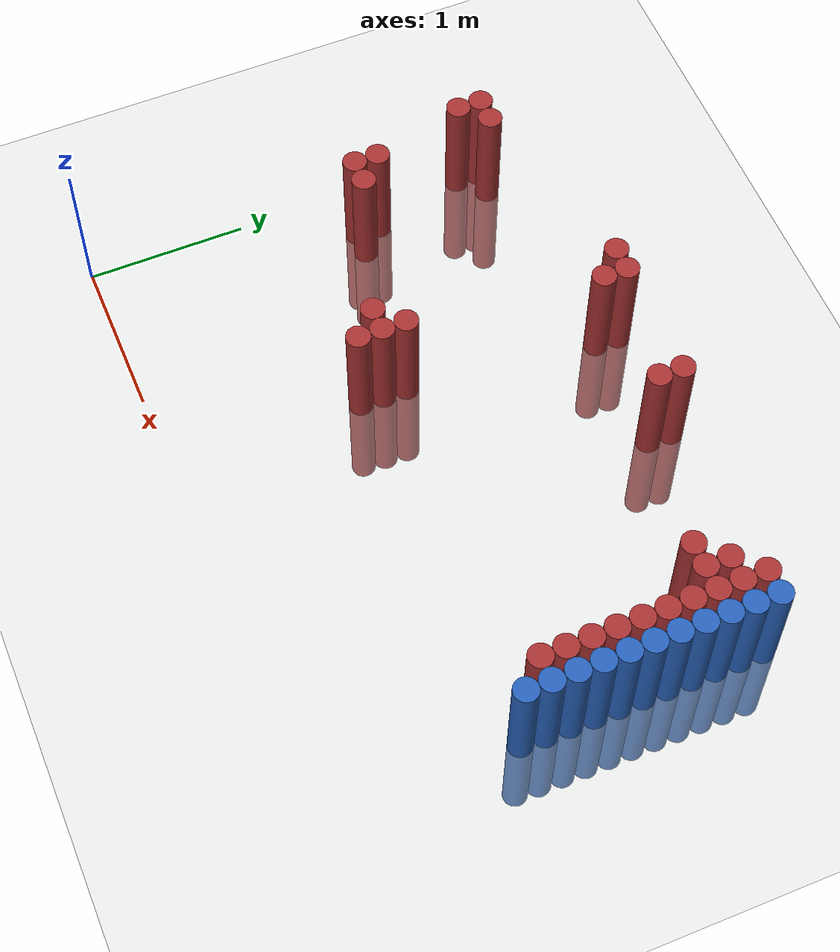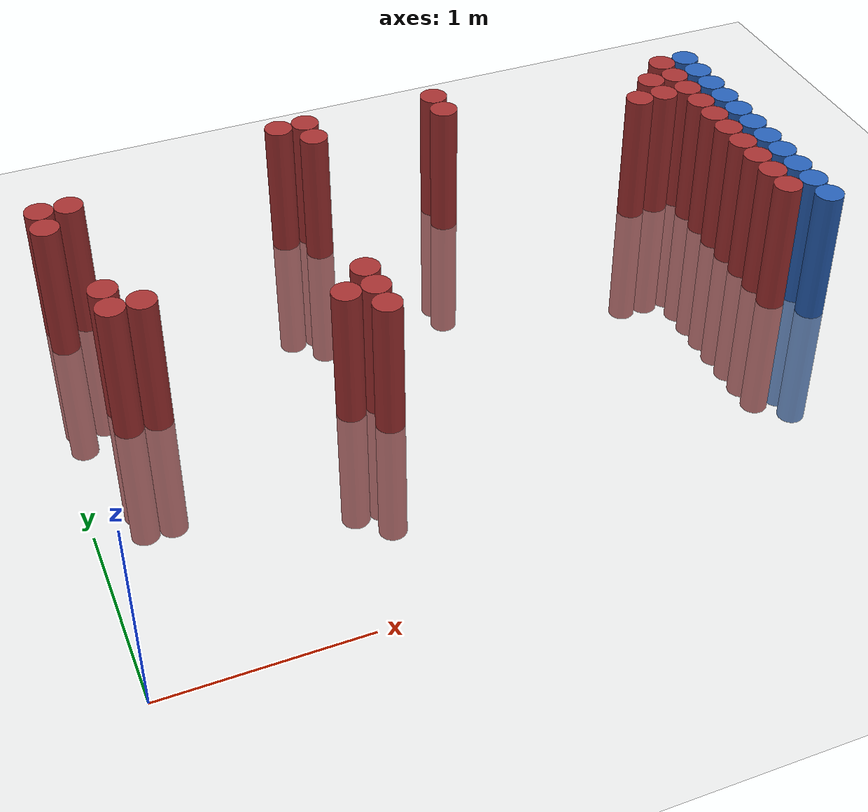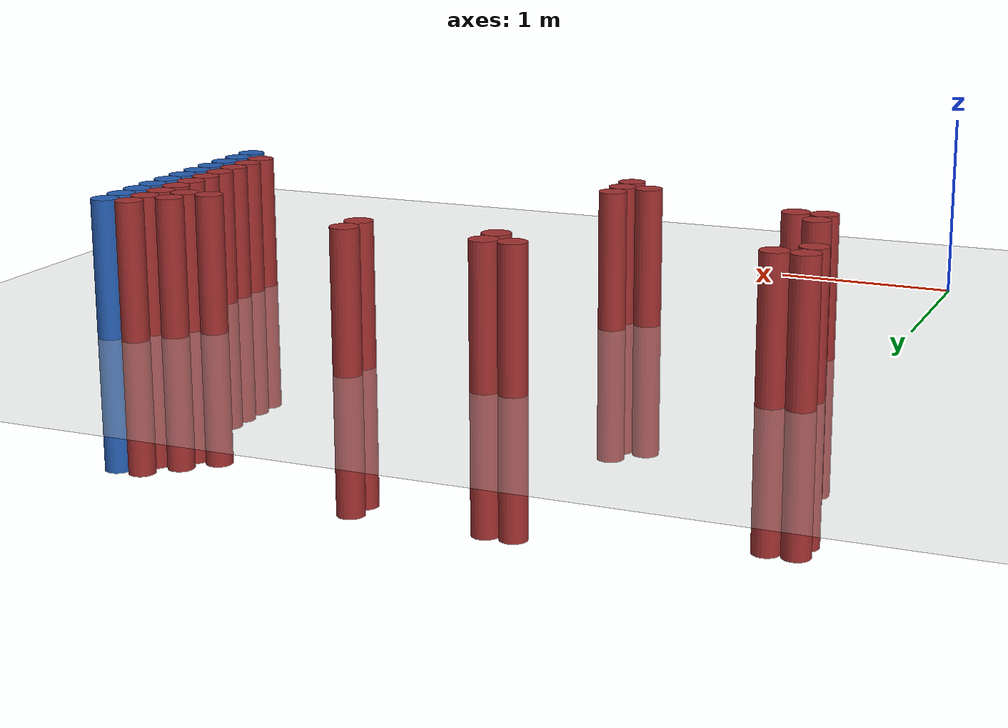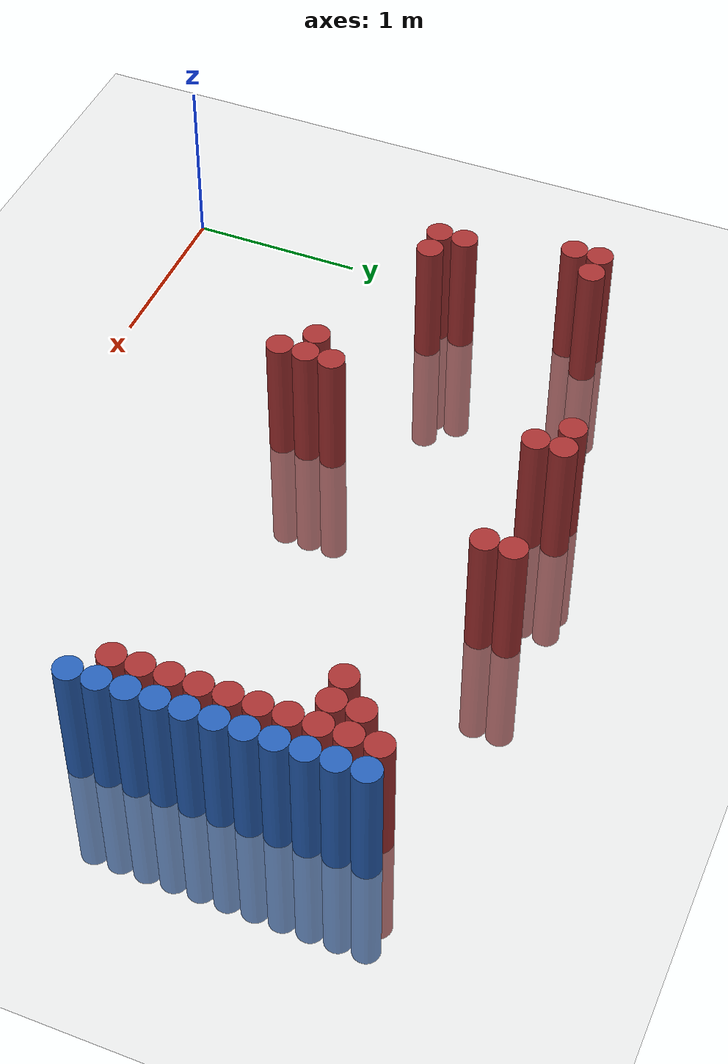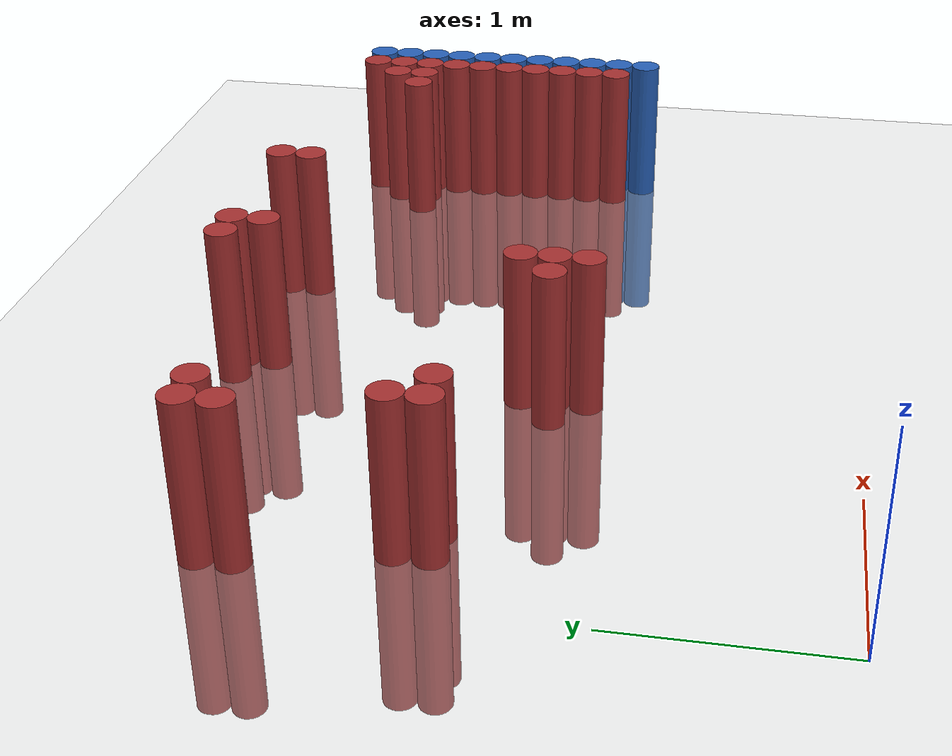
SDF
<sdf version="1.6">
 <world name="default">
  <model name="ground_plane">
   <static>1</static>
   <link name="link">
    <collision name="collision">
     <geometry><plane><normal>0 0 1</normal><size>100 100</size></plane></geometry>
     <surface><friction><ode><mu>100</mu><mu2>50</mu2></ode></friction></surface>
    </collision>
    <visual name="visual">
     <cast_shadows>0</cast_shadows>
     <geometry><plane><normal>0 0 1</normal><size>100 100</size></plane></geometry>
     <material>
      <script><uri>file://media/materials/scripts/gazebo.material</uri><name>Gazebo/Grey</name></script>
     </material>
    </visual>
   </link>
  </model>
  <model name="unit_cylinder_132">
   <static>1</static>
   <pose>3.925000 1.375000 0.000000 0.000000 0.000000 0.000000</pose>
   <link name="link">
    <inertial>
     <mass>1</mass>
     <inertia><ixx>0.145833</ixx><ixy>0</ixy><ixz>0</ixz><iyy>0.145833</iyy><iyz>0</iyz><izz>0.125</izz></inertia>
    </inertial>
    <collision name="collision">
     <geometry><cylinder><radius>0.075000</radius><length>1.5</length></cylinder></geometry>
    </collision>
    <visual name="visual">
     <geometry><cylinder><radius>0.075000</radius><length>1.5</length></cylinder></geometry>
     <material>
      <ambient>0.152000 0.379000 0.720000 1</ambient>
      <diffuse>0.152000 0.379000 0.720000 1</diffuse>
     </material>
     <material>
      <script><name>Gazebo/Grey</name><uri>file://media/materials/scripts/gazebo.material</uri></script>
     </material>
    </visual>
   </link>
  </model>
  <model name="unit_cylinder_134">
   <static>1</static>
   <pose>3.925000 1.525000 0.000000 0.000000 0.000000 0.000000</pose>
   <link name="link">
    <inertial>
     <mass>1</mass>
     <inertia><ixx>0.145833</ixx><ixy>0</ixy><ixz>0</ixz><iyy>0.145833</iyy><iyz>0</iyz><izz>0.125</izz></inertia>
    </inertial>
    <collision name="collision">
     <geometry><cylinder><radius>0.075000</radius><length>1.5</length></cylinder></geometry>
    </collision>
    <visual name="visual">
     <geometry><cylinder><radius>0.075000</radius><length>1.5</length></cylinder></geometry>
     <material>
      <ambient>0.152000 0.379000 0.720000 1</ambient>
      <diffuse>0.152000 0.379000 0.720000 1</diffuse>
     </material>
     <material>
      <script><name>Gazebo/Grey</name><uri>file://media/materials/scripts/gazebo.material</uri></script>
     </material>
    </visual>
   </link>
  </model>
  <model name="unit_cylinder_136">
   <static>1</static>
   <pose>3.925000 1.675000 0.000000 0.000000 0.000000 0.000000</pose>
   <link name="link">
    <inertial>
     <mass>1</mass>
     <inertia><ixx>0.145833</ixx><ixy>0</ixy><ixz>0</ixz><iyy>0.145833</iyy><iyz>0</iyz><izz>0.125</izz></inertia>
    </inertial>
    <collision name="collision">
     <geometry><cylinder><radius>0.075000</radius><length>1.5</length></cylinder></geometry>
    </collision>
    <visual name="visual">
     <geometry><cylinder><radius>0.075000</radius><length>1.5</length></cylinder></geometry>
     <material>
      <ambient>0.152000 0.379000 0.720000 1</ambient>
      <diffuse>0.152000 0.379000 0.720000 1</diffuse>
     </material>
     <material>
      <script><name>Gazebo/Grey</name><uri>file://media/materials/scripts/gazebo.material</uri></script>
     </material>
    </visual>
   </link>
  </model>
  <model name="unit_cylinder_138">
   <static>1</static>
   <pose>3.925000 1.825000 0.000000 0.000000 0.000000 0.000000</pose>
   <link name="link">
    <inertial>
     <mass>1</mass>
     <inertia><ixx>0.145833</ixx><ixy>0</ixy><ixz>0</ixz><iyy>0.145833</iyy><iyz>0</iyz><izz>0.125</izz></inertia>
    </inertial>
    <collision name="collision">
     <geometry><cylinder><radius>0.075000</radius><length>1.5</length></cylinder></geometry>
    </collision>
    <visual name="visual">
     <geometry><cylinder><radius>0.075000</radius><length>1.5</length></cylinder></geometry>
     <material>
      <ambient>0.152000 0.379000 0.720000 1</ambient>
      <diffuse>0.152000 0.379000 0.720000 1</diffuse>
     </material>
     <material>
      <script><name>Gazebo/Grey</name><uri>file://media/materials/scripts/gazebo.material</uri></script>
     </material>
    </visual>
   </link>
  </model>
  <model name="unit_cylinder_140">
   <static>1</static>
   <pose>3.925000 1.975000 0.000000 0.000000 0.000000 0.000000</pose>
   <link name="link">
    <inertial>
     <mass>1</mass>
     <inertia><ixx>0.145833</ixx><ixy>0</ixy><ixz>0</ixz><iyy>0.145833</iyy><iyz>0</iyz><izz>0.125</izz></inertia>
    </inertial>
    <collision name="collision">
     <geometry><cylinder><radius>0.075000</radius><length>1.5</length></cylinder></geometry>
    </collision>
    <visual name="visual">
     <geometry><cylinder><radius>0.075000</radius><length>1.5</length></cylinder></geometry>
     <material>
      <ambient>0.152000 0.379000 0.720000 1</ambient>
      <diffuse>0.152000 0.379000 0.720000 1</diffuse>
     </material>
     <material>
      <script><name>Gazebo/Grey</name><uri>file://media/materials/scripts/gazebo.material</uri></script>
     </material>
    </visual>
   </link>
  </model>
  <model name="unit_cylinder_142">
   <static>1</static>
   <pose>3.925000 2.125000 0.000000 0.000000 0.000000 0.000000</pose>
   <link name="link">
    <inertial>
     <mass>1</mass>
     <inertia><ixx>0.145833</ixx><ixy>0</ixy><ixz>0</ixz><iyy>0.145833</iyy><iyz>0</iyz><izz>0.125</izz></inertia>
    </inertial>
    <collision name="collision">
     <geometry><cylinder><radius>0.075000</radius><length>1.5</length></cylinder></geometry>
    </collision>
    <visual name="visual">
     <geometry><cylinder><radius>0.075000</radius><length>1.5</length></cylinder></geometry>
     <material>
      <ambient>0.152000 0.379000 0.720000 1</ambient>
      <diffuse>0.152000 0.379000 0.720000 1</diffuse>
     </material>
     <material>
      <script><name>Gazebo/Grey</name><uri>file://media/materials/scripts/gazebo.material</uri></script>
     </material>
    </visual>
   </link>
  </model>
  <model name="unit_cylinder_144">
   <static>1</static>
   <pose>3.925000 2.275000 0.000000 0.000000 0.000000 0.000000</pose>
   <link name="link">
    <inertial>
     <mass>1</mass>
     <inertia><ixx>0.145833</ixx><ixy>0</ixy><ixz>0</ixz><iyy>0.145833</iyy><iyz>0</iyz><izz>0.125</izz></inertia>
    </inertial>
    <collision name="collision">
     <geometry><cylinder><radius>0.075000</radius><length>1.5</length></cylinder></geometry>
    </collision>
    <visual name="visual">
     <geometry><cylinder><radius>0.075000</radius><length>1.5</length></cylinder></geometry>
     <material>
      <ambient>0.152000 0.379000 0.720000 1</ambient>
      <diffuse>0.152000 0.379000 0.720000 1</diffuse>
     </material>
     <material>
      <script><name>Gazebo/Grey</name><uri>file://media/materials/scripts/gazebo.material</uri></script>
     </material>
    </visual>
   </link>
  </model>
  <model name="unit_cylinder_146">
   <static>1</static>
   <pose>3.925000 2.425000 0.000000 0.000000 0.000000 0.000000</pose>
   <link name="link">
    <inertial>
     <mass>1</mass>
     <inertia><ixx>0.145833</ixx><ixy>0</ixy><ixz>0</ixz><iyy>0.145833</iyy><iyz>0</iyz><izz>0.125</izz></inertia>
    </inertial>
    <collision name="collision">
     <geometry><cylinder><radius>0.075000</radius><length>1.5</length></cylinder></geometry>
    </collision>
    <visual name="visual">
     <geometry><cylinder><radius>0.075000</radius><length>1.5</length></cylinder></geometry>
     <material>
      <ambient>0.152000 0.379000 0.720000 1</ambient>
      <diffuse>0.152000 0.379000 0.720000 1</diffuse>
     </material>
     <material>
      <script><name>Gazebo/Grey</name><uri>file://media/materials/scripts/gazebo.material</uri></script>
     </material>
    </visual>
   </link>
  </model>
  <model name="unit_cylinder_148">
   <static>1</static>
   <pose>3.925000 2.575000 0.000000 0.000000 0.000000 0.000000</pose>
   <link name="link">
    <inertial>
     <mass>1</mass>
     <inertia><ixx>0.145833</ixx><ixy>0</ixy><ixz>0</ixz><iyy>0.145833</iyy><iyz>0</iyz><izz>0.125</izz></inertia>
    </inertial>
    <collision name="collision">
     <geometry><cylinder><radius>0.075000</radius><length>1.5</length></cylinder></geometry>
    </collision>
    <visual name="visual">
     <geometry><cylinder><radius>0.075000</radius><length>1.5</length></cylinder></geometry>
     <material>
      <ambient>0.152000 0.379000 0.720000 1</ambient>
      <diffuse>0.152000 0.379000 0.720000 1</diffuse>
     </material>
     <material>
      <script><name>Gazebo/Grey</name><uri>file://media/materials/scripts/gazebo.material</uri></script>
     </material>
    </visual>
   </link>
  </model>
  <model name="unit_cylinder_150">
   <static>1</static>
   <pose>3.925000 2.725000 0.000000 0.000000 0.000000 0.000000</pose>
   <link name="link">
    <inertial>
     <mass>1</mass>
     <inertia><ixx>0.145833</ixx><ixy>0</ixy><ixz>0</ixz><iyy>0.145833</iyy><iyz>0</iyz><izz>0.125</izz></inertia>
    </inertial>
    <collision name="collision">
     <geometry><cylinder><radius>0.075000</radius><length>1.5</length></cylinder></geometry>
    </collision>
    <visual name="visual">
     <geometry><cylinder><radius>0.075000</radius><length>1.5</length></cylinder></geometry>
     <material>
      <ambient>0.152000 0.379000 0.720000 1</ambient>
      <diffuse>0.152000 0.379000 0.720000 1</diffuse>
     </material>
     <material>
      <script><name>Gazebo/Grey</name><uri>file://media/materials/scripts/gazebo.material</uri></script>
     </material>
    </visual>
   </link>
  </model>
  <model name="unit_cylinder_333">
   <static>1</static>
   <pose>0.175000 2.425000 0.000000 0.000000 0.000000 0.000000</pose>
   <link name="link">
    <inertial>
     <mass>1</mass>
     <inertia><ixx>0.145833</ixx><ixy>0</ixy><ixz>0</ixz><iyy>0.145833</iyy><iyz>0</iyz><izz>0.125</izz></inertia>
    </inertial>
    <collision name="collision">
     <geometry><cylinder><radius>0.075000</radius><length>1.5</length></cylinder></geometry>
    </collision>
    <visual name="visual">
     <geometry><cylinder><radius>0.075000</radius><length>1.5</length></cylinder></geometry>
     <material>
      <ambient>0.648000 0.192000 0.192000 1</ambient>
      <diffuse>0.648000 0.192000 0.192000 1</diffuse>
     </material>
     <material>
      <script><name>Gazebo/Grey</name><uri>file://media/materials/scripts/gazebo.material</uri></script>
     </material>
    </visual>
   </link>
  </model>
  <model name="unit_cylinder_334">
   <static>1</static>
   <pose>0.175000 2.575000 0.000000 0.000000 0.000000 0.000000</pose>
   <link name="link">
    <inertial>
     <mass>1</mass>
     <inertia><ixx>0.145833</ixx><ixy>0</ixy><ixz>0</ixz><iyy>0.145833</iyy><iyz>0</iyz><izz>0.125</izz></inertia>
    </inertial>
    <collision name="collision">
     <geometry><cylinder><radius>0.075000</radius><length>1.5</length></cylinder></geometry>
    </collision>
    <visual name="visual">
     <geometry><cylinder><radius>0.075000</radius><length>1.5</length></cylinder></geometry>
     <material>
      <ambient>0.648000 0.192000 0.192000 1</ambient>
      <diffuse>0.648000 0.192000 0.192000 1</diffuse>
     </material>
     <material>
      <script><name>Gazebo/Grey</name><uri>file://media/materials/scripts/gazebo.material</uri></script>
     </material>
    </visual>
   </link>
  </model>
  <model name="unit_cylinder_336">
   <static>1</static>
   <pose>0.325000 1.675000 0.000000 0.000000 0.000000 0.000000</pose>
   <link name="link">
    <inertial>
     <mass>1</mass>
     <inertia><ixx>0.145833</ixx><ixy>0</ixy><ixz>0</ixz><iyy>0.145833</iyy><iyz>0</iyz><izz>0.125</izz></inertia>
    </inertial>
    <collision name="collision">
     <geometry><cylinder><radius>0.075000</radius><length>1.5</length></cylinder></geometry>
    </collision>
    <visual name="visual">
     <geometry><cylinder><radius>0.075000</radius><length>1.5</length></cylinder></geometry>
     <material>
      <ambient>0.648000 0.192000 0.192000 1</ambient>
      <diffuse>0.648000 0.192000 0.192000 1</diffuse>
     </material>
     <material>
      <script><name>Gazebo/Grey</name><uri>file://media/materials/scripts/gazebo.material</uri></script>
     </material>
    </visual>
   </link>
  </model>
  <model name="unit_cylinder_337">
   <static>1</static>
   <pose>0.325000 1.825000 0.000000 0.000000 0.000000 0.000000</pose>
   <link name="link">
    <inertial>
     <mass>1</mass>
     <inertia><ixx>0.145833</ixx><ixy>0</ixy><ixz>0</ixz><iyy>0.145833</iyy><iyz>0</iyz><izz>0.125</izz></inertia>
    </inertial>
    <collision name="collision">
     <geometry><cylinder><radius>0.075000</radius><length>1.5</length></cylinder></geometry>
    </collision>
    <visual name="visual">
     <geometry><cylinder><radius>0.075000</radius><length>1.5</length></cylinder></geometry>
     <material>
      <ambient>0.648000 0.192000 0.192000 1</ambient>
      <diffuse>0.648000 0.192000 0.192000 1</diffuse>
     </material>
     <material>
      <script><name>Gazebo/Grey</name><uri>file://media/materials/scripts/gazebo.material</uri></script>
     </material>
    </visual>
   </link>
  </model>
  <model name="unit_cylinder_338">
   <static>1</static>
   <pose>0.325000 2.575000 0.000000 0.000000 0.000000 0.000000</pose>
   <link name="link">
    <inertial>
     <mass>1</mass>
     <inertia><ixx>0.145833</ixx><ixy>0</ixy><ixz>0</ixz><iyy>0.145833</iyy><iyz>0</iyz><izz>0.125</izz></inertia>
    </inertial>
    <collision name="collision">
     <geometry><cylinder><radius>0.075000</radius><length>1.5</length></cylinder></geometry>
    </collision>
    <visual name="visual">
     <geometry><cylinder><radius>0.075000</radius><length>1.5</length></cylinder></geometry>
     <material>
      <ambient>0.648000 0.192000 0.192000 1</ambient>
      <diffuse>0.648000 0.192000 0.192000 1</diffuse>
     </material>
     <material>
      <script><name>Gazebo/Grey</name><uri>file://media/materials/scripts/gazebo.material</uri></script>
     </material>
    </visual>
   </link>
  </model>
  <model name="unit_cylinder_342">
   <static>1</static>
   <pose>0.475000 1.675000 0.000000 0.000000 0.000000 0.000000</pose>
   <link name="link">
    <inertial>
     <mass>1</mass>
     <inertia><ixx>0.145833</ixx><ixy>0</ixy><ixz>0</ixz><iyy>0.145833</iyy><iyz>0</iyz><izz>0.125</izz></inertia>
    </inertial>
    <collision name="collision">
     <geometry><cylinder><radius>0.075000</radius><length>1.5</length></cylinder></geometry>
    </collision>
    <visual name="visual">
     <geometry><cylinder><radius>0.075000</radius><length>1.5</length></cylinder></geometry>
     <material>
      <ambient>0.648000 0.192000 0.192000 1</ambient>
      <diffuse>0.648000 0.192000 0.192000 1</diffuse>
     </material>
     <material>
      <script><name>Gazebo/Grey</name><uri>file://media/materials/scripts/gazebo.material</uri></script>
     </material>
    </visual>
   </link>
  </model>
  <model name="unit_cylinder_372">
   <static>1</static>
   <pose>1.375000 1.375000 0.000000 0.000000 0.000000 0.000000</pose>
   <link name="link">
    <inertial>
     <mass>1</mass>
     <inertia><ixx>0.145833</ixx><ixy>0</ixy><ixz>0</ixz><iyy>0.145833</iyy><iyz>0</iyz><izz>0.125</izz></inertia>
    </inertial>
    <collision name="collision">
     <geometry><cylinder><radius>0.075000</radius><length>1.5</length></cylinder></geometry>
    </collision>
    <visual name="visual">
     <geometry><cylinder><radius>0.075000</radius><length>1.5</length></cylinder></geometry>
     <material>
      <ambient>0.648000 0.192000 0.192000 1</ambient>
      <diffuse>0.648000 0.192000 0.192000 1</diffuse>
     </material>
     <material>
      <script><name>Gazebo/Grey</name><uri>file://media/materials/scripts/gazebo.material</uri></script>
     </material>
    </visual>
   </link>
  </model>
  <model name="unit_cylinder_374">
   <static>1</static>
   <pose>1.525000 1.225000 0.000000 0.000000 0.000000 0.000000</pose>
   <link name="link">
    <inertial>
     <mass>1</mass>
     <inertia><ixx>0.145833</ixx><ixy>0</ixy><ixz>0</ixz><iyy>0.145833</iyy><iyz>0</iyz><izz>0.125</izz></inertia>
    </inertial>
    <collision name="collision">
     <geometry><cylinder><radius>0.075000</radius><length>1.5</length></cylinder></geometry>
    </collision>
    <visual name="visual">
     <geometry><cylinder><radius>0.075000</radius><length>1.5</length></cylinder></geometry>
     <material>
      <ambient>0.648000 0.192000 0.192000 1</ambient>
      <diffuse>0.648000 0.192000 0.192000 1</diffuse>
     </material>
     <material>
      <script><name>Gazebo/Grey</name><uri>file://media/materials/scripts/gazebo.material</uri></script>
     </material>
    </visual>
   </link>
  </model>
  <model name="unit_cylinder_375">
   <static>1</static>
   <pose>1.525000 1.375000 0.000000 0.000000 0.000000 0.000000</pose>
   <link name="link">
    <inertial>
     <mass>1</mass>
     <inertia><ixx>0.145833</ixx><ixy>0</ixy><ixz>0</ixz><iyy>0.145833</iyy><iyz>0</iyz><izz>0.125</izz></inertia>
    </inertial>
    <collision name="collision">
     <geometry><cylinder><radius>0.075000</radius><length>1.5</length></cylinder></geometry>
    </collision>
    <visual name="visual">
     <geometry><cylinder><radius>0.075000</radius><length>1.5</length></cylinder></geometry>
     <material>
      <ambient>0.648000 0.192000 0.192000 1</ambient>
      <diffuse>0.648000 0.192000 0.192000 1</diffuse>
     </material>
     <material>
      <script><name>Gazebo/Grey</name><uri>file://media/materials/scripts/gazebo.material</uri></script>
     </material>
    </visual>
   </link>
  </model>
  <model name="unit_cylinder_376">
   <static>1</static>
   <pose>1.525000 1.525000 0.000000 0.000000 0.000000 0.000000</pose>
   <link name="link">
    <inertial>
     <mass>1</mass>
     <inertia><ixx>0.145833</ixx><ixy>0</ixy><ixz>0</ixz><iyy>0.145833</iyy><iyz>0</iyz><izz>0.125</izz></inertia>
    </inertial>
    <collision name="collision">
     <geometry><cylinder><radius>0.075000</radius><length>1.5</length></cylinder></geometry>
    </collision>
    <visual name="visual">
     <geometry><cylinder><radius>0.075000</radius><length>1.5</length></cylinder></geometry>
     <material>
      <ambient>0.648000 0.192000 0.192000 1</ambient>
      <diffuse>0.648000 0.192000 0.192000 1</diffuse>
     </material>
     <material>
      <script><name>Gazebo/Grey</name><uri>file://media/materials/scripts/gazebo.material</uri></script>
     </material>
    </visual>
   </link>
  </model>
  <model name="unit_cylinder_377">
   <static>1</static>
   <pose>1.525000 2.875000 0.000000 0.000000 0.000000 0.000000</pose>
   <link name="link">
    <inertial>
     <mass>1</mass>
     <inertia><ixx>0.145833</ixx><ixy>0</ixy><ixz>0</ixz><iyy>0.145833</iyy><iyz>0</iyz><izz>0.125</izz></inertia>
    </inertial>
    <collision name="collision">
     <geometry><cylinder><radius>0.075000</radius><length>1.5</length></cylinder></geometry>
    </collision>
    <visual name="visual">
     <geometry><cylinder><radius>0.075000</radius><length>1.5</length></cylinder></geometry>
     <material>
      <ambient>0.648000 0.192000 0.192000 1</ambient>
      <diffuse>0.648000 0.192000 0.192000 1</diffuse>
     </material>
     <material>
      <script><name>Gazebo/Grey</name><uri>file://media/materials/scripts/gazebo.material</uri></script>
     </material>
    </visual>
   </link>
  </model>
  <model name="unit_cylinder_379">
   <static>1</static>
   <pose>1.675000 2.725000 0.000000 0.000000 0.000000 0.000000</pose>
   <link name="link">
    <inertial>
     <mass>1</mass>
     <inertia><ixx>0.145833</ixx><ixy>0</ixy><ixz>0</ixz><iyy>0.145833</iyy><iyz>0</iyz><izz>0.125</izz></inertia>
    </inertial>
    <collision name="collision">
     <geometry><cylinder><radius>0.075000</radius><length>1.5</length></cylinder></geometry>
    </collision>
    <visual name="visual">
     <geometry><cylinder><radius>0.075000</radius><length>1.5</length></cylinder></geometry>
     <material>
      <ambient>0.648000 0.192000 0.192000 1</ambient>
      <diffuse>0.648000 0.192000 0.192000 1</diffuse>
     </material>
     <material>
      <script><name>Gazebo/Grey</name><uri>file://media/materials/scripts/gazebo.material</uri></script>
     </material>
    </visual>
   </link>
  </model>
  <model name="unit_cylinder_380">
   <static>1</static>
   <pose>1.675000 2.875000 0.000000 0.000000 0.000000 0.000000</pose>
   <link name="link">
    <inertial>
     <mass>1</mass>
     <inertia><ixx>0.145833</ixx><ixy>0</ixy><ixz>0</ixz><iyy>0.145833</iyy><iyz>0</iyz><izz>0.125</izz></inertia>
    </inertial>
    <collision name="collision">
     <geometry><cylinder><radius>0.075000</radius><length>1.5</length></cylinder></geometry>
    </collision>
    <visual name="visual">
     <geometry><cylinder><radius>0.075000</radius><length>1.5</length></cylinder></geometry>
     <material>
      <ambient>0.648000 0.192000 0.192000 1</ambient>
      <diffuse>0.648000 0.192000 0.192000 1</diffuse>
     </material>
     <material>
      <script><name>Gazebo/Grey</name><uri>file://media/materials/scripts/gazebo.material</uri></script>
     </material>
    </visual>
   </link>
  </model>
  <model name="unit_cylinder_393">
   <static>1</static>
   <pose>2.425000 2.725000 0.000000 0.000000 0.000000 0.000000</pose>
   <link name="link">
    <inertial>
     <mass>1</mass>
     <inertia><ixx>0.145833</ixx><ixy>0</ixy><ixz>0</ixz><iyy>0.145833</iyy><iyz>0</iyz><izz>0.125</izz></inertia>
    </inertial>
    <collision name="collision">
     <geometry><cylinder><radius>0.075000</radius><length>1.5</length></cylinder></geometry>
    </collision>
    <visual name="visual">
     <geometry><cylinder><radius>0.075000</radius><length>1.5</length></cylinder></geometry>
     <material>
      <ambient>0.648000 0.192000 0.192000 1</ambient>
      <diffuse>0.648000 0.192000 0.192000 1</diffuse>
     </material>
     <material>
      <script><name>Gazebo/Grey</name><uri>file://media/materials/scripts/gazebo.material</uri></script>
     </material>
    </visual>
   </link>
  </model>
  <model name="unit_cylinder_394">
   <static>1</static>
   <pose>2.425000 2.875000 0.000000 0.000000 0.000000 0.000000</pose>
   <link name="link">
    <inertial>
     <mass>1</mass>
     <inertia><ixx>0.145833</ixx><ixy>0</ixy><ixz>0</ixz><iyy>0.145833</iyy><iyz>0</iyz><izz>0.125</izz></inertia>
    </inertial>
    <collision name="collision">
     <geometry><cylinder><radius>0.075000</radius><length>1.5</length></cylinder></geometry>
    </collision>
    <visual name="visual">
     <geometry><cylinder><radius>0.075000</radius><length>1.5</length></cylinder></geometry>
     <material>
      <ambient>0.648000 0.192000 0.192000 1</ambient>
      <diffuse>0.648000 0.192000 0.192000 1</diffuse>
     </material>
     <material>
      <script><name>Gazebo/Grey</name><uri>file://media/materials/scripts/gazebo.material</uri></script>
     </material>
    </visual>
   </link>
  </model>
  <model name="unit_cylinder_411">
   <static>1</static>
   <pose>3.475000 2.425000 0.000000 0.000000 0.000000 0.000000</pose>
   <link name="link">
    <inertial>
     <mass>1</mass>
     <inertia><ixx>0.145833</ixx><ixy>0</ixy><ixz>0</ixz><iyy>0.145833</iyy><iyz>0</iyz><izz>0.125</izz></inertia>
    </inertial>
    <collision name="collision">
     <geometry><cylinder><radius>0.075000</radius><length>1.5</length></cylinder></geometry>
    </collision>
    <visual name="visual">
     <geometry><cylinder><radius>0.075000</radius><length>1.5</length></cylinder></geometry>
     <material>
      <ambient>0.648000 0.192000 0.192000 1</ambient>
      <diffuse>0.648000 0.192000 0.192000 1</diffuse>
     </material>
     <material>
      <script><name>Gazebo/Grey</name><uri>file://media/materials/scripts/gazebo.material</uri></script>
     </material>
    </visual>
   </link>
  </model>
  <model name="unit_cylinder_412">
   <static>1</static>
   <pose>3.625000 2.425000 0.000000 0.000000 0.000000 0.000000</pose>
   <link name="link">
    <inertial>
     <mass>1</mass>
     <inertia><ixx>0.145833</ixx><ixy>0</ixy><ixz>0</ixz><iyy>0.145833</iyy><iyz>0</iyz><izz>0.125</izz></inertia>
    </inertial>
    <collision name="collision">
     <geometry><cylinder><radius>0.075000</radius><length>1.5</length></cylinder></geometry>
    </collision>
    <visual name="visual">
     <geometry><cylinder><radius>0.075000</radius><length>1.5</length></cylinder></geometry>
     <material>
      <ambient>0.648000 0.192000 0.192000 1</ambient>
      <diffuse>0.648000 0.192000 0.192000 1</diffuse>
     </material>
     <material>
      <script><name>Gazebo/Grey</name><uri>file://media/materials/scripts/gazebo.material</uri></script>
     </material>
    </visual>
   </link>
  </model>
  <model name="unit_cylinder_413">
   <static>1</static>
   <pose>3.625000 2.575000 0.000000 0.000000 0.000000 0.000000</pose>
   <link name="link">
    <inertial>
     <mass>1</mass>
     <inertia><ixx>0.145833</ixx><ixy>0</ixy><ixz>0</ixz><iyy>0.145833</iyy><iyz>0</iyz><izz>0.125</izz></inertia>
    </inertial>
    <collision name="collision">
     <geometry><cylinder><radius>0.075000</radius><length>1.5</length></cylinder></geometry>
    </collision>
    <visual name="visual">
     <geometry><cylinder><radius>0.075000</radius><length>1.5</length></cylinder></geometry>
     <material>
      <ambient>0.648000 0.192000 0.192000 1</ambient>
      <diffuse>0.648000 0.192000 0.192000 1</diffuse>
     </material>
     <material>
      <script><name>Gazebo/Grey</name><uri>file://media/materials/scripts/gazebo.material</uri></script>
     </material>
    </visual>
   </link>
  </model>
  <model name="unit_cylinder_422">
   <static>1</static>
   <pose>3.775000 1.375000 0.000000 0.000000 0.000000 0.000000</pose>
   <link name="link">
    <inertial>
     <mass>1</mass>
     <inertia><ixx>0.145833</ixx><ixy>0</ixy><ixz>0</ixz><iyy>0.145833</iyy><iyz>0</iyz><izz>0.125</izz></inertia>
    </inertial>
    <collision name="collision">
     <geometry><cylinder><radius>0.075000</radius><length>1.5</length></cylinder></geometry>
    </collision>
    <visual name="visual">
     <geometry><cylinder><radius>0.075000</radius><length>1.5</length></cylinder></geometry>
     <material>
      <ambient>0.648000 0.192000 0.192000 1</ambient>
      <diffuse>0.648000 0.192000 0.192000 1</diffuse>
     </material>
     <material>
      <script><name>Gazebo/Grey</name><uri>file://media/materials/scripts/gazebo.material</uri></script>
     </material>
    </visual>
   </link>
  </model>
  <model name="unit_cylinder_423">
   <static>1</static>
   <pose>3.775000 1.525000 0.000000 0.000000 0.000000 0.000000</pose>
   <link name="link">
    <inertial>
     <mass>1</mass>
     <inertia><ixx>0.145833</ixx><ixy>0</ixy><ixz>0</ixz><iyy>0.145833</iyy><iyz>0</iyz><izz>0.125</izz></inertia>
    </inertial>
    <collision name="collision">
     <geometry><cylinder><radius>0.075000</radius><length>1.5</length></cylinder></geometry>
    </collision>
    <visual name="visual">
     <geometry><cylinder><radius>0.075000</radius><length>1.5</length></cylinder></geometry>
     <material>
      <ambient>0.648000 0.192000 0.192000 1</ambient>
      <diffuse>0.648000 0.192000 0.192000 1</diffuse>
     </material>
     <material>
      <script><name>Gazebo/Grey</name><uri>file://media/materials/scripts/gazebo.material</uri></script>
     </material>
    </visual>
   </link>
  </model>
  <model name="unit_cylinder_424">
   <static>1</static>
   <pose>3.775000 1.675000 0.000000 0.000000 0.000000 0.000000</pose>
   <link name="link">
    <inertial>
     <mass>1</mass>
     <inertia><ixx>0.145833</ixx><ixy>0</ixy><ixz>0</ixz><iyy>0.145833</iyy><iyz>0</iyz><izz>0.125</izz></inertia>
    </inertial>
    <collision name="collision">
     <geometry><cylinder><radius>0.075000</radius><length>1.5</length></cylinder></geometry>
    </collision>
    <visual name="visual">
     <geometry><cylinder><radius>0.075000</radius><length>1.5</length></cylinder></geometry>
     <material>
      <ambient>0.648000 0.192000 0.192000 1</ambient>
      <diffuse>0.648000 0.192000 0.192000 1</diffuse>
     </material>
     <material>
      <script><name>Gazebo/Grey</name><uri>file://media/materials/scripts/gazebo.material</uri></script>
     </material>
    </visual>
   </link>
  </model>
  <model name="unit_cylinder_425">
   <static>1</static>
   <pose>3.775000 1.825000 0.000000 0.000000 0.000000 0.000000</pose>
   <link name="link">
    <inertial>
     <mass>1</mass>
     <inertia><ixx>0.145833</ixx><ixy>0</ixy><ixz>0</ixz><iyy>0.145833</iyy><iyz>0</iyz><izz>0.125</izz></inertia>
    </inertial>
    <collision name="collision">
     <geometry><cylinder><radius>0.075000</radius><length>1.5</length></cylinder></geometry>
    </collision>
    <visual name="visual">
     <geometry><cylinder><radius>0.075000</radius><length>1.5</length></cylinder></geometry>
     <material>
      <ambient>0.648000 0.192000 0.192000 1</ambient>
      <diffuse>0.648000 0.192000 0.192000 1</diffuse>
     </material>
     <material>
      <script><name>Gazebo/Grey</name><uri>file://media/materials/scripts/gazebo.material</uri></script>
     </material>
    </visual>
   </link>
  </model>
  <model name="unit_cylinder_426">
   <static>1</static>
   <pose>3.775000 1.975000 0.000000 0.000000 0.000000 0.000000</pose>
   <link name="link">
    <inertial>
     <mass>1</mass>
     <inertia><ixx>0.145833</ixx><ixy>0</ixy><ixz>0</ixz><iyy>0.145833</iyy><iyz>0</iyz><izz>0.125</izz></inertia>
    </inertial>
    <collision name="collision">
     <geometry><cylinder><radius>0.075000</radius><length>1.5</length></cylinder></geometry>
    </collision>
    <visual name="visual">
     <geometry><cylinder><radius>0.075000</radius><length>1.5</length></cylinder></geometry>
     <material>
      <ambient>0.648000 0.192000 0.192000 1</ambient>
      <diffuse>0.648000 0.192000 0.192000 1</diffuse>
     </material>
     <material>
      <script><name>Gazebo/Grey</name><uri>file://media/materials/scripts/gazebo.material</uri></script>
     </material>
    </visual>
   </link>
  </model>
  <model name="unit_cylinder_427">
   <static>1</static>
   <pose>3.775000 2.125000 0.000000 0.000000 0.000000 0.000000</pose>
   <link name="link">
    <inertial>
     <mass>1</mass>
     <inertia><ixx>0.145833</ixx><ixy>0</ixy><ixz>0</ixz><iyy>0.145833</iyy><iyz>0</iyz><izz>0.125</izz></inertia>
    </inertial>
    <collision name="collision">
     <geometry><cylinder><radius>0.075000</radius><length>1.5</length></cylinder></geometry>
    </collision>
    <visual name="visual">
     <geometry><cylinder><radius>0.075000</radius><length>1.5</length></cylinder></geometry>
     <material>
      <ambient>0.648000 0.192000 0.192000 1</ambient>
      <diffuse>0.648000 0.192000 0.192000 1</diffuse>
     </material>
     <material>
      <script><name>Gazebo/Grey</name><uri>file://media/materials/scripts/gazebo.material</uri></script>
     </material>
    </visual>
   </link>
  </model>
  <model name="unit_cylinder_428">
   <static>1</static>
   <pose>3.775000 2.275000 0.000000 0.000000 0.000000 0.000000</pose>
   <link name="link">
    <inertial>
     <mass>1</mass>
     <inertia><ixx>0.145833</ixx><ixy>0</ixy><ixz>0</ixz><iyy>0.145833</iyy><iyz>0</iyz><izz>0.125</izz></inertia>
    </inertial>
    <collision name="collision">
     <geometry><cylinder><radius>0.075000</radius><length>1.5</length></cylinder></geometry>
    </collision>
    <visual name="visual">
     <geometry><cylinder><radius>0.075000</radius><length>1.5</length></cylinder></geometry>
     <material>
      <ambient>0.648000 0.192000 0.192000 1</ambient>
      <diffuse>0.648000 0.192000 0.192000 1</diffuse>
     </material>
     <material>
      <script><name>Gazebo/Grey</name><uri>file://media/materials/scripts/gazebo.material</uri></script>
     </material>
    </visual>
   </link>
  </model>
  <model name="unit_cylinder_429">
   <static>1</static>
   <pose>3.775000 2.425000 0.000000 0.000000 0.000000 0.000000</pose>
   <link name="link">
    <inertial>
     <mass>1</mass>
     <inertia><ixx>0.145833</ixx><ixy>0</ixy><ixz>0</ixz><iyy>0.145833</iyy><iyz>0</iyz><izz>0.125</izz></inertia>
    </inertial>
    <collision name="collision">
     <geometry><cylinder><radius>0.075000</radius><length>1.5</length></cylinder></geometry>
    </collision>
    <visual name="visual">
     <geometry><cylinder><radius>0.075000</radius><length>1.5</length></cylinder></geometry>
     <material>
      <ambient>0.648000 0.192000 0.192000 1</ambient>
      <diffuse>0.648000 0.192000 0.192000 1</diffuse>
     </material>
     <material>
      <script><name>Gazebo/Grey</name><uri>file://media/materials/scripts/gazebo.material</uri></script>
     </material>
    </visual>
   </link>
  </model>
  <model name="unit_cylinder_430">
   <static>1</static>
   <pose>3.775000 2.575000 0.000000 0.000000 0.000000 0.000000</pose>
   <link name="link">
    <inertial>
     <mass>1</mass>
     <inertia><ixx>0.145833</ixx><ixy>0</ixy><ixz>0</ixz><iyy>0.145833</iyy><iyz>0</iyz><izz>0.125</izz></inertia>
    </inertial>
    <collision name="collision">
     <geometry><cylinder><radius>0.075000</radius><length>1.5</length></cylinder></geometry>
    </collision>
    <visual name="visual">
     <geometry><cylinder><radius>0.075000</radius><length>1.5</length></cylinder></geometry>
     <material>
      <ambient>0.648000 0.192000 0.192000 1</ambient>
      <diffuse>0.648000 0.192000 0.192000 1</diffuse>
     </material>
     <material>
      <script><name>Gazebo/Grey</name><uri>file://media/materials/scripts/gazebo.material</uri></script>
     </material>
    </visual>
   </link>
  </model>
  <model name="unit_cylinder_431">
   <static>1</static>
   <pose>3.775000 2.725000 0.000000 0.000000 0.000000 0.000000</pose>
   <link name="link">
    <inertial>
     <mass>1</mass>
     <inertia><ixx>0.145833</ixx><ixy>0</ixy><ixz>0</ixz><iyy>0.145833</iyy><iyz>0</iyz><izz>0.125</izz></inertia>
    </inertial>
    <collision name="collision">
     <geometry><cylinder><radius>0.075000</radius><length>1.5</length></cylinder></geometry>
    </collision>
    <visual name="visual">
     <geometry><cylinder><radius>0.075000</radius><length>1.5</length></cylinder></geometry>
     <material>
      <ambient>0.648000 0.192000 0.192000 1</ambient>
      <diffuse>0.648000 0.192000 0.192000 1</diffuse>
     </material>
     <material>
      <script><name>Gazebo/Grey</name><uri>file://media/materials/scripts/gazebo.material</uri></script>
     </material>
    </visual>
   </link>
  </model>
  <model name="unit_cylinder_463">
   <static>1</static>
   <pose>3.925000 1.225000 0.000000 0.000000 0.000000 0.000000</pose>
   <link name="link">
    <inertial>
     <mass>1</mass>
     <inertia><ixx>0.145833</ixx><ixy>0</ixy><ixz>0</ixz><iyy>0.145833</iyy><iyz>0</iyz><izz>0.125</izz></inertia>
    </inertial>
    <collision name="collision">
     <geometry><cylinder><radius>0.075000</radius><length>1.5</length></cylinder></geometry>
    </collision>
    <visual name="visual">
     <geometry><cylinder><radius>0.075000</radius><length>1.5</length></cylinder></geometry>
     <material>
      <ambient>0.152000 0.379000 0.720000 1</ambient>
      <diffuse>0.152000 0.379000 0.720000 1</diffuse>
     </material>
     <material>
      <script><name>Gazebo/Grey</name><uri>file://media/materials/scripts/gazebo.material</uri></script>
     </material>
    </visual>
   </link>
  </model>
  <model name="unit_cylinder_464">
   <static>1</static>
   <pose>3.925000 1.375000 0.000000 0.000000 0.000000 0.000000</pose>
   <link name="link">
    <inertial>
     <mass>1</mass>
     <inertia><ixx>0.145833</ixx><ixy>0</ixy><ixz>0</ixz><iyy>0.145833</iyy><iyz>0</iyz><izz>0.125</izz></inertia>
    </inertial>
    <collision name="collision">
     <geometry><cylinder><radius>0.075000</radius><length>1.5</length></cylinder></geometry>
    </collision>
    <visual name="visual">
     <geometry><cylinder><radius>0.075000</radius><length>1.5</length></cylinder></geometry>
     <material>
      <ambient>0.152000 0.379000 0.720000 1</ambient>
      <diffuse>0.152000 0.379000 0.720000 1</diffuse>
     </material>
     <material>
      <script><name>Gazebo/Grey</name><uri>file://media/materials/scripts/gazebo.material</uri></script>
     </material>
    </visual>
   </link>
  </model>
  <model name="unit_cylinder_465">
   <static>1</static>
   <pose>3.925000 1.525000 0.000000 0.000000 0.000000 0.000000</pose>
   <link name="link">
    <inertial>
     <mass>1</mass>
     <inertia><ixx>0.145833</ixx><ixy>0</ixy><ixz>0</ixz><iyy>0.145833</iyy><iyz>0</iyz><izz>0.125</izz></inertia>
    </inertial>
    <collision name="collision">
     <geometry><cylinder><radius>0.075000</radius><length>1.5</length></cylinder></geometry>
    </collision>
    <visual name="visual">
     <geometry><cylinder><radius>0.075000</radius><length>1.5</length></cylinder></geometry>
     <material>
      <ambient>0.152000 0.379000 0.720000 1</ambient>
      <diffuse>0.152000 0.379000 0.720000 1</diffuse>
     </material>
     <material>
      <script><name>Gazebo/Grey</name><uri>file://media/materials/scripts/gazebo.material</uri></script>
     </material>
    </visual>
   </link>
  </model>
  <model name="unit_cylinder_466">
   <static>1</static>
   <pose>3.925000 1.675000 0.000000 0.000000 0.000000 0.000000</pose>
   <link name="link">
    <inertial>
     <mass>1</mass>
     <inertia><ixx>0.145833</ixx><ixy>0</ixy><ixz>0</ixz><iyy>0.145833</iyy><iyz>0</iyz><izz>0.125</izz></inertia>
    </inertial>
    <collision name="collision">
     <geometry><cylinder><radius>0.075000</radius><length>1.5</length></cylinder></geometry>
    </collision>
    <visual name="visual">
     <geometry><cylinder><radius>0.075000</radius><length>1.5</length></cylinder></geometry>
     <material>
      <ambient>0.152000 0.379000 0.720000 1</ambient>
      <diffuse>0.152000 0.379000 0.720000 1</diffuse>
     </material>
     <material>
      <script><name>Gazebo/Grey</name><uri>file://media/materials/scripts/gazebo.material</uri></script>
     </material>
    </visual>
   </link>
  </model>
  <model name="unit_cylinder_467">
   <static>1</static>
   <pose>3.925000 1.825000 0.000000 0.000000 0.000000 0.000000</pose>
   <link name="link">
    <inertial>
     <mass>1</mass>
     <inertia><ixx>0.145833</ixx><ixy>0</ixy><ixz>0</ixz><iyy>0.145833</iyy><iyz>0</iyz><izz>0.125</izz></inertia>
    </inertial>
    <collision name="collision">
     <geometry><cylinder><radius>0.075000</radius><length>1.5</length></cylinder></geometry>
    </collision>
    <visual name="visual">
     <geometry><cylinder><radius>0.075000</radius><length>1.5</length></cylinder></geometry>
     <material>
      <ambient>0.152000 0.379000 0.720000 1</ambient>
      <diffuse>0.152000 0.379000 0.720000 1</diffuse>
     </material>
     <material>
      <script><name>Gazebo/Grey</name><uri>file://media/materials/scripts/gazebo.material</uri></script>
     </material>
    </visual>
   </link>
  </model>
  <model name="unit_cylinder_468">
   <static>1</static>
   <pose>3.925000 1.975000 0.000000 0.000000 0.000000 0.000000</pose>
   <link name="link">
    <inertial>
     <mass>1</mass>
     <inertia><ixx>0.145833</ixx><ixy>0</ixy><ixz>0</ixz><iyy>0.145833</iyy><iyz>0</iyz><izz>0.125</izz></inertia>
    </inertial>
    <collision name="collision">
     <geometry><cylinder><radius>0.075000</radius><length>1.5</length></cylinder></geometry>
    </collision>
    <visual name="visual">
     <geometry><cylinder><radius>0.075000</radius><length>1.5</length></cylinder></geometry>
     <material>
      <ambient>0.152000 0.379000 0.720000 1</ambient>
      <diffuse>0.152000 0.379000 0.720000 1</diffuse>
     </material>
     <material>
      <script><name>Gazebo/Grey</name><uri>file://media/materials/scripts/gazebo.material</uri></script>
     </material>
    </visual>
   </link>
  </model>
  <model name="unit_cylinder_469">
   <static>1</static>
   <pose>3.925000 2.125000 0.000000 0.000000 0.000000 0.000000</pose>
   <link name="link">
    <inertial>
     <mass>1</mass>
     <inertia><ixx>0.145833</ixx><ixy>0</ixy><ixz>0</ixz><iyy>0.145833</iyy><iyz>0</iyz><izz>0.125</izz></inertia>
    </inertial>
    <collision name="collision">
     <geometry><cylinder><radius>0.075000</radius><length>1.5</length></cylinder></geometry>
    </collision>
    <visual name="visual">
     <geometry><cylinder><radius>0.075000</radius><length>1.5</length></cylinder></geometry>
     <material>
      <ambient>0.152000 0.379000 0.720000 1</ambient>
      <diffuse>0.152000 0.379000 0.720000 1</diffuse>
     </material>
     <material>
      <script><name>Gazebo/Grey</name><uri>file://media/materials/scripts/gazebo.material</uri></script>
     </material>
    </visual>
   </link>
  </model>
  <model name="unit_cylinder_470">
   <static>1</static>
   <pose>3.925000 2.275000 0.000000 0.000000 0.000000 0.000000</pose>
   <link name="link">
    <inertial>
     <mass>1</mass>
     <inertia><ixx>0.145833</ixx><ixy>0</ixy><ixz>0</ixz><iyy>0.145833</iyy><iyz>0</iyz><izz>0.125</izz></inertia>
    </inertial>
    <collision name="collision">
     <geometry><cylinder><radius>0.075000</radius><length>1.5</length></cylinder></geometry>
    </collision>
    <visual name="visual">
     <geometry><cylinder><radius>0.075000</radius><length>1.5</length></cylinder></geometry>
     <material>
      <ambient>0.152000 0.379000 0.720000 1</ambient>
      <diffuse>0.152000 0.379000 0.720000 1</diffuse>
     </material>
     <material>
      <script><name>Gazebo/Grey</name><uri>file://media/materials/scripts/gazebo.material</uri></script>
     </material>
    </visual>
   </link>
  </model>
  <model name="unit_cylinder_471">
   <static>1</static>
   <pose>3.925000 2.425000 0.000000 0.000000 0.000000 0.000000</pose>
   <link name="link">
    <inertial>
     <mass>1</mass>
     <inertia><ixx>0.145833</ixx><ixy>0</ixy><ixz>0</ixz><iyy>0.145833</iyy><iyz>0</iyz><izz>0.125</izz></inertia>
    </inertial>
    <collision name="collision">
     <geometry><cylinder><radius>0.075000</radius><length>1.5</length></cylinder></geometry>
    </collision>
    <visual name="visual">
     <geometry><cylinder><radius>0.075000</radius><length>1.5</length></cylinder></geometry>
     <material>
      <ambient>0.152000 0.379000 0.720000 1</ambient>
      <diffuse>0.152000 0.379000 0.720000 1</diffuse>
     </material>
     <material>
      <script><name>Gazebo/Grey</name><uri>file://media/materials/scripts/gazebo.material</uri></script>
     </material>
    </visual>
   </link>
  </model>
  <model name="unit_cylinder_472">
   <static>1</static>
   <pose>3.925000 2.575000 0.000000 0.000000 0.000000 0.000000</pose>
   <link name="link">
    <inertial>
     <mass>1</mass>
     <inertia><ixx>0.145833</ixx><ixy>0</ixy><ixz>0</ixz><iyy>0.145833</iyy><iyz>0</iyz><izz>0.125</izz></inertia>
    </inertial>
    <collision name="collision">
     <geometry><cylinder><radius>0.075000</radius><length>1.5</length></cylinder></geometry>
    </collision>
    <visual name="visual">
     <geometry><cylinder><radius>0.075000</radius><length>1.5</length></cylinder></geometry>
     <material>
      <ambient>0.152000 0.379000 0.720000 1</ambient>
      <diffuse>0.152000 0.379000 0.720000 1</diffuse>
     </material>
     <material>
      <script><name>Gazebo/Grey</name><uri>file://media/materials/scripts/gazebo.material</uri></script>
     </material>
    </visual>
   </link>
  </model>
  <model name="unit_cylinder_473">
   <static>1</static>
   <pose>3.925000 2.725000 0.000000 0.000000 0.000000 0.000000</pose>
   <link name="link">
    <inertial>
     <mass>1</mass>
     <inertia><ixx>0.145833</ixx><ixy>0</ixy><ixz>0</ixz><iyy>0.145833</iyy><iyz>0</iyz><izz>0.125</izz></inertia>
    </inertial>
    <collision name="collision">
     <geometry><cylinder><radius>0.075000</radius><length>1.5</length></cylinder></geometry>
    </collision>
    <visual name="visual">
     <geometry><cylinder><radius>0.075000</radius><length>1.5</length></cylinder></geometry>
     <material>
      <ambient>0.152000 0.379000 0.720000 1</ambient>
      <diffuse>0.152000 0.379000 0.720000 1</diffuse>
     </material>
     <material>
      <script><name>Gazebo/Grey</name><uri>file://media/materials/scripts/gazebo.material</uri></script>
     </material>
    </visual>
   </link>
  </model>
 </world>
</sdf>
